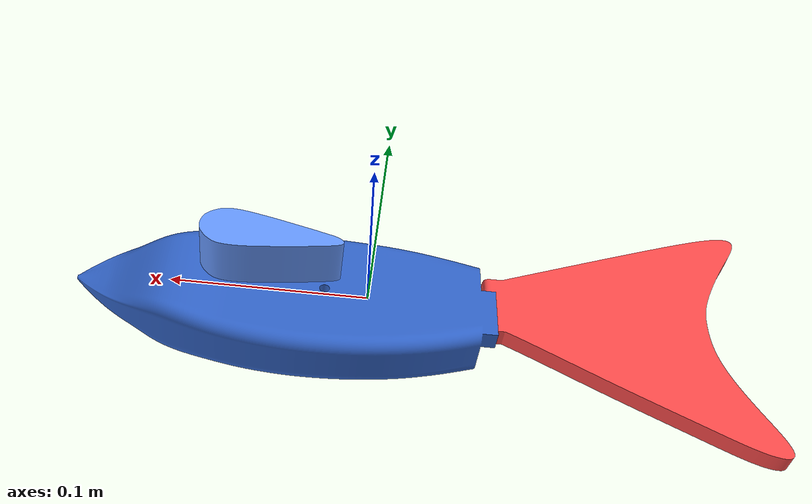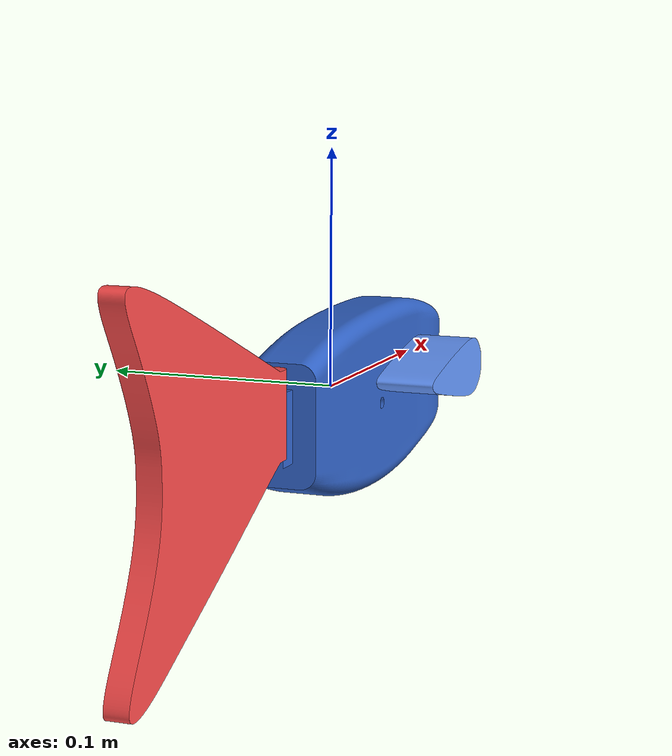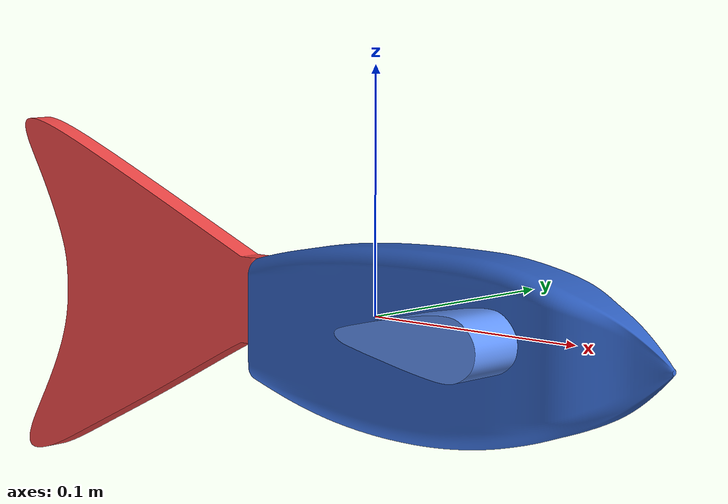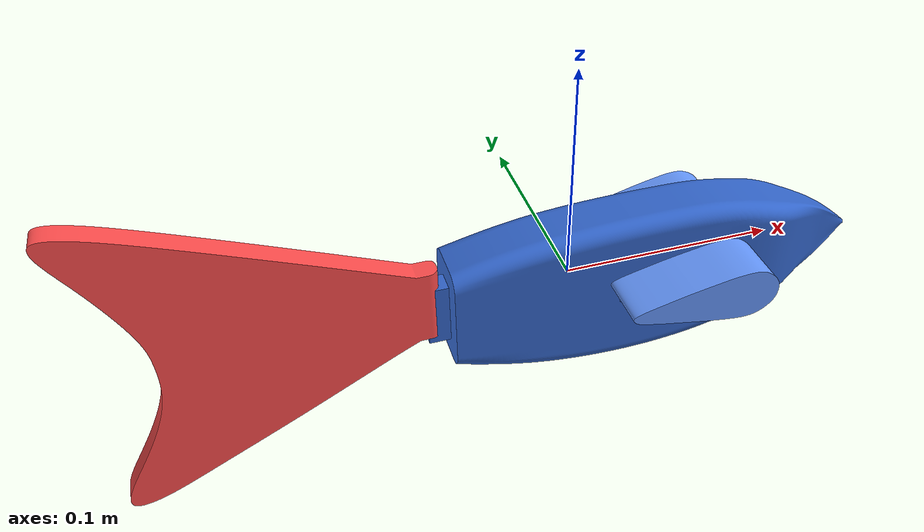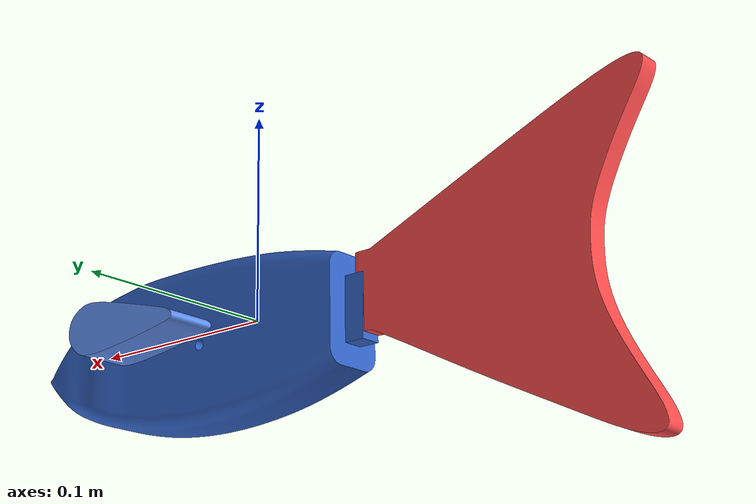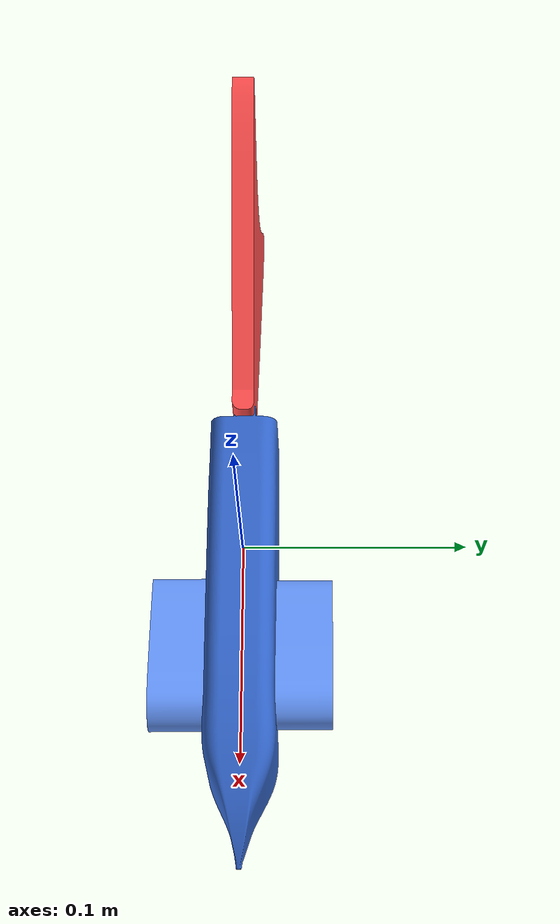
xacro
<?xml version="1.0"?>
<robot name="fishbot">

  <!-- Base Link (Main Body) -->

  <link name="base_link">

    <visual>
      <origin xyz="0 0 0" rpy="3.1416 0 -1.5708"/>
      <geometry>
        <mesh filename="src/fishbot_description/meshes/base_link.stl"
        scale="0.001 0.001 0.001"/>
      </geometry>

      <material name="blue">
        <color rgba="0.2 0.4 0.8 1"/>
      </material>
    </visual>

    <collision>
      <origin xyz="0 0 0" rpy="0 0 1.5708"/>
      <geometry>
        <mesh filename="src/fishbot_description/meshes/base_link.stl"
        scale="0.001 0.001 0.001"/>
      </geometry>
    </collision>

    <inertial>
      <origin xyz="0 0 0" rpy="0 0 1.5708"/>
      <mass value="3.31"/>
      <inertia
      ixx="0.01034"
      ixy="0.0"
      ixz="0.0"
      iyy="0.02758"
      iyz="0.0"
      izz="0.03172"/>
    </inertial>

  </link>

  <!-- Tail Fin -->

  <link name="tail_link">

    <visual>
      <origin xyz="0 0 0"
              rpy="3.1416 3.1416 4.7124"/>

      <geometry>
        <mesh filename="src/fishbot_description/meshes/tail_link.stl"
        scale="0.001 0.001 0.001"/>
      </geometry>

      <material name="red">
        <color rgba="1 0.3 0.3 1"/>
      </material>
    </visual>

    <collision>
      <origin xyz="-0.06 0 0"
              rpy="1.5708 1.5708 0"/>

      <geometry>
        <mesh filename="src/fishbot_description/meshes/tail_link.stl"
        scale="0.001 0.001 0.001"/>
      </geometry>
    </collision>

    <inertial>
      <origin xyz="-0.06 0 0"
              rpy="0 0 0"/>

      <mass value="0.66"/>

      <inertia
        ixx="0.00095"
        ixy="0.0"
        ixz="0.0"
        iyy="0.00057"
        iyz="0.0"
        izz="0.00148"/>
    </inertial>

  </link>

  <!-- Tail Joint -->

  <joint name="tail_joint" type="revolute">

    <origin xyz="-0.065 0 0"
            rpy="0 0 0"/>

    <parent link="base_link"/>
    <child link="tail_link"/>

    <!-- Swing left-right -->

    <axis xyz="0 0 1"/>

    <limit
      lower="-0.7"
      upper="0.7"
      effort="10"
      velocity="4"/>

  </joint>

  <!-- Left Pectoral Fin -->

  <link name="left_fin_link">

    <visual>
      <origin xyz="0 -0.07 0"
              rpy="0 0 1.5708"/>

      <geometry>
        <mesh filename="src/fishbot_description/meshes/left_fin_link.stl"
        scale="0.001 0.001 0.001"/>
      </geometry>

      <material name="light_blue">
        <color rgba="0.4 0.6 1.0 1"/>
      </material>
    </visual>

    <collision>
      <origin xyz="0 0.03 0"
              rpy="0 0 0"/>

      <geometry>
        <mesh filename="src/fishbot_description/meshes/left_fin_link.stl"
        scale="0.001 0.001 0.001"/>
      </geometry>
    </collision>

    <inertial>
      <origin xyz="0 0.03 0"
              rpy="0 0 0"/>

      <mass value="0.165"/>

      <inertia
        ixx="0.000053"
        ixy="0.0"
        ixz="0.0"
        iyy="0.000070"
        iyz="0.0"
        izz="0.000117"/>
    </inertial>

  </link>

  <!-- Left Fin Joint -->

  <joint name="left_fin_joint" type="revolute">

    <origin xyz="0.05 0.075 0"
            rpy="0 0 0"/>

    <parent link="base_link"/>
    <child link="left_fin_link"/>

    <!-- Pitch -->

    <axis xyz="0 1 0"/>

    <limit
      lower="-0.3"
      upper="0.3"
      effort="5"
      velocity="2"/>

  </joint>

  <!-- Right Pectoral Fin -->

  <link name="right_fin_link">

    <visual>
      <origin xyz="0 0.07 0"
              rpy="0 0 1.5708"/>

      <geometry>
        <mesh filename="src/fishbot_description/meshes/right_fin_link.stl"
        scale="0.001 0.001 0.001"/>
      </geometry>

      <material name="light_blue">
        <color rgba="0.4 0.6 1.0 1"/>
      </material>
    </visual>

    <collision>
      <origin xyz="0 -0.03 0"
              rpy="0 0 0"/>

      <geometry>
        <mesh filename="src/fishbot_description/meshes/right_fin_link.stl"
        scale="0.001 0.001 0.001"/>
      </geometry>
    </collision>

    <inertial>
      <origin xyz="0 -0.03 0"
              rpy="0 0 0"/>

      <mass value="0.165"/>

      <inertia
        ixx="0.000053"
        ixy="0.0"
        ixz="0.0"
        iyy="0.000070"
        iyz="0.0"
        izz="0.000117"/>
    </inertial>

  </link>

  <!-- Right Fin Joint -->

  <joint name="right_fin_joint" type="revolute">

    <origin xyz="0.05 -0.075 0"
            rpy="0 0 0"/>

    <parent link="base_link"/>
    <child link="right_fin_link"/>

    <!-- Pitch -->

    <axis xyz="0 1 0"/>

    <limit
      lower="-0.3"
      upper="0.3"
      effort="5"
      velocity="2"/>

  </joint>

  <!-- ros2_control -->

  <ros2_control name="FishbotSystem" type="system">

    <hardware>
      <plugin>gazebo_ros2_control/GazeboSystem</plugin>
      <param name="robot_param">robot_description</param>
      <param name="robot_param_node">robot_state_publisher</param>
    </hardware>

    <!-- Tail Joint -->

    <joint name="tail_joint">
      <command_interface name="position"/>
      <state_interface name="position"/>
      <state_interface name="velocity"/>
    </joint>

    <!-- Left Fin -->

    <joint name="left_fin_joint">
      <command_interface name="position"/>
      <state_interface name="position"/>
      <state_interface name="velocity"/>
    </joint>

    <!-- Right Fin -->

    <joint name="right_fin_joint">
      <command_interface name="position"/>
      <state_interface name="position"/>
      <state_interface name="velocity"/>
    </joint>

  </ros2_control>

<!-- Gazebo Plugin -->

<gazebo>
  <plugin
      name="gazebo_ros2_control"
      filename="libgazebo_ros2_control.so">

    <parameters>
      $(find fishbot_description)/config/fishbot_controllers.yaml
    </parameters>

  </plugin>
</gazebo>

<gazebo>
  <plugin
      name="fishbot_buoyancy"
      filename="libbuoyancy_plugin.so">
  </plugin>
</gazebo>

<gazebo>
  <plugin
      name="fishbot_drag"
      filename="libdrag_plugin.so">
  </plugin>
</gazebo>

<gazebo>
  <plugin
      name="fishbot_thrust"
      filename="libthrust_plugin.so">

    <thrust_coefficient>0.5</thrust_coefficient>

    <steering_coefficient>0.5</steering_coefficient>

    <velocity_filter_alpha>0.9</velocity_filter_alpha>

    <water_density>1000.0</water_density>

    <tail_area>0.013</tail_area>

    <tail_lever_length>0.06</tail_lever_length>

  </plugin>
</gazebo>

<gazebo>
  <plugin
      name="fishbot_fin_hydrodynamics"
      filename="libfin_hydrodynamics_plugin.so">
  </plugin>
</gazebo>

</robot>
